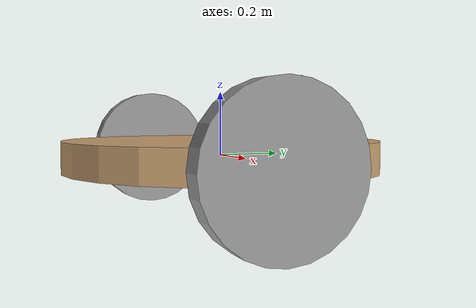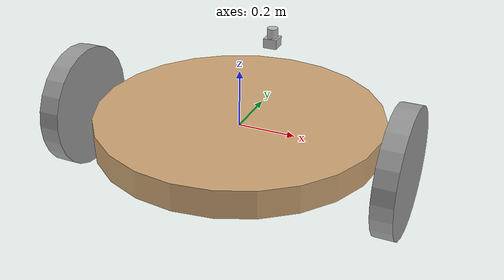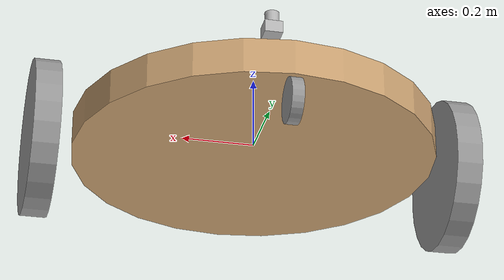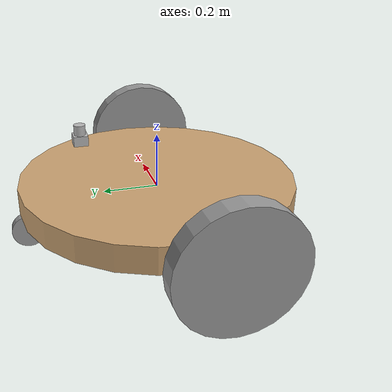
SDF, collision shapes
<?xml version='1.0'?>
<sdf version='1.7'>
  <model name='robot_draft'>
    <link name='caster_wheel'>
      <inertial>
        <mass>2</mass>
        <inertia>
          <ixx>0.00197836</ixx>
          <ixy>0</ixy>
          <ixz>0</ixz>
          <iyy>0.00197836</iyy>
          <iyz>0</iyz>
          <izz>0.00361478</izz>
        </inertia>
        <pose>0 0 0 0 -0 0</pose>
      </inertial>
      <pose>0.001456 0.474958 -0.113119 -3.14126 1.57079 -3.14126</pose>
      <self_collide>0</self_collide>
      <enable_wind>0</enable_wind>
      <kinematic>0</kinematic>
      <gravity>1</gravity>
      <visual name='visual'>
        <pose>0 0 0 0 -0 0</pose>
        <geometry>
          <cylinder>
            <radius>0.0601226</radius>
            <length>0.0320289</length>
          </cylinder>
        </geometry>
        <material>
          <lighting>1</lighting>
          <script>
            <uri>file://media/materials/scripts/gazebo.material</uri>
            <name>Gazebo/Grey</name>
          </script>
          <shader type='pixel'>
            <normal_map>__default__</normal_map>
          </shader>
          <ambient>0.3 0.3 0.3 1</ambient>
          <diffuse>0.7 0.7 0.7 1</diffuse>
          <specular>0.01 0.01 0.01 1</specular>
          <emissive>0 0 0 1</emissive>
        </material>
        <transparency>0</transparency>
        <cast_shadows>1</cast_shadows>
      </visual>
      <collision name='collision'>
        <laser_retro>0</laser_retro>
        <max_contacts>10</max_contacts>
        <pose>0 0 0 0 -0 0</pose>
        <geometry>
          <cylinder>
            <radius>0.060123</radius>
            <length>0.032029</length>
          </cylinder>
        </geometry>
        <surface>
          <friction>
            <ode>
              <mu>1</mu>
              <mu2>1</mu2>
              <fdir1>0 0 0</fdir1>
              <slip1>0</slip1>
              <slip2>0</slip2>
            </ode>
            <torsional>
              <coefficient>1</coefficient>
              <patch_radius>0</patch_radius>
              <surface_radius>0</surface_radius>
              <use_patch_radius>1</use_patch_radius>
              <ode>
                <slip>0</slip>
              </ode>
            </torsional>
          </friction>
          <bounce>
            <restitution_coefficient>0</restitution_coefficient>
            <threshold>1e+06</threshold>
          </bounce>
          <contact>
            <collide_without_contact>0</collide_without_contact>
            <collide_without_contact_bitmask>1</collide_without_contact_bitmask>
            <collide_bitmask>1</collide_bitmask>
            <ode>
              <soft_cfm>0</soft_cfm>
              <soft_erp>0.2</soft_erp>
              <kp>1e+13</kp>
              <kd>1</kd>
              <max_vel>0.01</max_vel>
              <min_depth>0</min_depth>
            </ode>
            <bullet>
              <split_impulse>1</split_impulse>
              <split_impulse_penetration_threshold>-0.01</split_impulse_penetration_threshold>
              <soft_cfm>0</soft_cfm>
              <soft_erp>0.2</soft_erp>
              <kp>1e+13</kp>
              <kd>1</kd>
            </bullet>
          </contact>
        </surface>
      </collision>
    </link>
    <link name='chassis'>
      <inertial>
        <mass>20</mass>
        <inertia>
          <ixx>1.26558</ixx>
          <ixy>0</ixy>
          <ixz>0</ixz>
          <iyy>1.26558</iyy>
          <iyz>0</iyz>
          <izz>2.5</izz>
        </inertia>
        <pose>0 0 0 0 -0 0</pose>
      </inertial>
      <pose>0 0 0 0 -0 0</pose>
      <gravity>1</gravity>
      <self_collide>0</self_collide>
      <kinematic>0</kinematic>
      <enable_wind>0</enable_wind>
      <visual name='visual'>
        <pose>0 0 0 0 -0 0</pose>
        <geometry>
          <cylinder>
            <radius>0.5</radius>
            <length>0.0966706</length>
          </cylinder>
        </geometry>
        <material>
          <lighting>1</lighting>
          <script>
            <uri>file://media/materials/scripts/gazebo.material</uri>
            <name>Gazebo/Grey</name>
          </script>
          <shader type='pixel'>
            <normal_map>__default__</normal_map>
          </shader>
          <ambient>0.8 0.64 0.45 1</ambient>
          <diffuse>0.7 0.7 0.7 1</diffuse>
          <specular>0.01 0.01 0.01 1</specular>
          <emissive>0 0 0 1</emissive>
        </material>
        <transparency>0</transparency>
        <cast_shadows>1</cast_shadows>
      </visual>
      <collision name='collision'>
        <laser_retro>0</laser_retro>
        <max_contacts>10</max_contacts>
        <pose>0 0 0 0 -0 0</pose>
        <geometry>
          <cylinder>
            <radius>0.5</radius>
            <length>0.096671</length>
          </cylinder>
        </geometry>
        <surface>
          <friction>
            <ode>
              <mu>1</mu>
              <mu2>1</mu2>
              <fdir1>0 0 0</fdir1>
              <slip1>0</slip1>
              <slip2>0</slip2>
            </ode>
            <torsional>
              <coefficient>1</coefficient>
              <patch_radius>0</patch_radius>
              <surface_radius>0</surface_radius>
              <use_patch_radius>1</use_patch_radius>
              <ode>
                <slip>0</slip>
              </ode>
            </torsional>
          </friction>
          <bounce>
            <restitution_coefficient>0</restitution_coefficient>
            <threshold>1e+06</threshold>
          </bounce>
          <contact>
            <collide_without_contact>0</collide_without_contact>
            <collide_without_contact_bitmask>1</collide_without_contact_bitmask>
            <collide_bitmask>1</collide_bitmask>
            <ode>
              <soft_cfm>0</soft_cfm>
              <soft_erp>0.2</soft_erp>
              <kp>1e+13</kp>
              <kd>1</kd>
              <max_vel>0.01</max_vel>
              <min_depth>0</min_depth>
            </ode>
            <bullet>
              <split_impulse>1</split_impulse>
              <split_impulse_penetration_threshold>-0.01</split_impulse_penetration_threshold>
              <soft_cfm>0</soft_cfm>
              <soft_erp>0.2</soft_erp>
              <kp>1e+13</kp>
              <kd>1</kd>
            </bullet>
          </contact>
        </surface>
      </collision>
    </link>
    <link name='left_wheel'>
      <inertial>
        <mass>1.5</mass>
        <inertia>
          <ixx>0.0181364</ixx>
          <ixy>0</ixy>
          <ixz>0</ixz>
          <iyy>0.0181364</iyy>
          <iyz>0</iyz>
          <izz>0.0349969</izz>
        </inertia>
        <pose>0 0 0 0 -0 0</pose>
      </inertial>
      <pose>-0.58 -0.08 0 -3.14126 1.57079 -3.14126</pose>
      <self_collide>0</self_collide>
      <enable_wind>0</enable_wind>
      <kinematic>0</kinematic>
      <gravity>1</gravity>
      <visual name='visual'>
        <pose>0 0 0 0 -0 0</pose>
        <geometry>
          <cylinder>
            <radius>0.216015</radius>
            <length>0.071441</length>
          </cylinder>
        </geometry>
        <material>
          <lighting>1</lighting>
          <script>
            <uri>file://media/materials/scripts/gazebo.material</uri>
            <name>Gazebo/Grey</name>
          </script>
          <shader type='pixel'>
            <normal_map>__default__</normal_map>
          </shader>
          <ambient>0.3 0.3 0.3 1</ambient>
          <diffuse>0.7 0.7 0.7 1</diffuse>
          <specular>0.01 0.01 0.01 1</specular>
          <emissive>0 0 0 1</emissive>
        </material>
        <transparency>0</transparency>
        <cast_shadows>1</cast_shadows>
      </visual>
      <collision name='collision'>
        <laser_retro>0</laser_retro>
        <max_contacts>10</max_contacts>
        <pose>0 0 0 0 -0 0</pose>
        <geometry>
          <cylinder>
            <radius>0.216015</radius>
            <length>0.071441</length>
          </cylinder>
        </geometry>
        <surface>
          <friction>
            <ode>
              <mu>1</mu>
              <mu2>1</mu2>
              <fdir1>0 0 0</fdir1>
              <slip1>0</slip1>
              <slip2>0</slip2>
            </ode>
            <torsional>
              <coefficient>1</coefficient>
              <patch_radius>0</patch_radius>
              <surface_radius>0</surface_radius>
              <use_patch_radius>1</use_patch_radius>
              <ode>
                <slip>0</slip>
              </ode>
            </torsional>
          </friction>
          <bounce>
            <restitution_coefficient>0</restitution_coefficient>
            <threshold>1e+06</threshold>
          </bounce>
          <contact>
            <collide_without_contact>0</collide_without_contact>
            <collide_without_contact_bitmask>1</collide_without_contact_bitmask>
            <collide_bitmask>1</collide_bitmask>
            <ode>
              <soft_cfm>0</soft_cfm>
              <soft_erp>0.2</soft_erp>
              <kp>1e+13</kp>
              <kd>1</kd>
              <max_vel>0.01</max_vel>
              <min_depth>0</min_depth>
            </ode>
            <bullet>
              <split_impulse>1</split_impulse>
              <split_impulse_penetration_threshold>-0.01</split_impulse_penetration_threshold>
              <soft_cfm>0</soft_cfm>
              <soft_erp>0.2</soft_erp>
              <kp>1e+13</kp>
              <kd>1</kd>
            </bullet>
          </contact>
        </surface>
      </collision>
    </link>
    <link name='right_wheel'>
      <inertial>
        <mass>1.5</mass>
        <inertia>
          <ixx>0.0181364</ixx>
          <ixy>0</ixy>
          <ixz>0</ixz>
          <iyy>0.0181364</iyy>
          <iyz>0</iyz>
          <izz>0.0349969</izz>
        </inertia>
        <pose>0 0 0 0 -0 0</pose>
      </inertial>
      <pose>0.58 -0.08 -0 -3.14126 1.57079 -3.14126</pose>
      <self_collide>0</self_collide>
      <enable_wind>0</enable_wind>
      <kinematic>0</kinematic>
      <gravity>1</gravity>
      <visual name='visual'>
        <pose>0 0 0 0 -0 0</pose>
        <geometry>
          <cylinder>
            <radius>0.216015</radius>
            <length>0.071441</length>
          </cylinder>
        </geometry>
        <material>
          <lighting>1</lighting>
          <script>
            <uri>file://media/materials/scripts/gazebo.material</uri>
            <name>Gazebo/Grey</name>
          </script>
          <shader type='pixel'>
            <normal_map>__default__</normal_map>
          </shader>
          <ambient>0.3 0.3 0.3 1</ambient>
          <diffuse>0.7 0.7 0.7 1</diffuse>
          <specular>0.01 0.01 0.01 1</specular>
          <emissive>0 0 0 1</emissive>
        </material>
        <transparency>0</transparency>
        <cast_shadows>1</cast_shadows>
      </visual>
      <collision name='collision'>
        <laser_retro>0</laser_retro>
        <max_contacts>10</max_contacts>
        <pose>0 0 0 0 -0 0</pose>
        <geometry>
          <cylinder>
            <radius>0.216015</radius>
            <length>0.071441</length>
          </cylinder>
        </geometry>
        <surface>
          <friction>
            <ode>
              <mu>1</mu>
              <mu2>1</mu2>
              <fdir1>0 0 0</fdir1>
              <slip1>0</slip1>
              <slip2>0</slip2>
            </ode>
            <torsional>
              <coefficient>1</coefficient>
              <patch_radius>0</patch_radius>
              <surface_radius>0</surface_radius>
              <use_patch_radius>1</use_patch_radius>
              <ode>
                <slip>0</slip>
              </ode>
            </torsional>
          </friction>
          <bounce>
            <restitution_coefficient>0</restitution_coefficient>
            <threshold>1e+06</threshold>
          </bounce>
          <contact>
            <collide_without_contact>0</collide_without_contact>
            <collide_without_contact_bitmask>1</collide_without_contact_bitmask>
            <collide_bitmask>1</collide_bitmask>
            <ode>
              <soft_cfm>0</soft_cfm>
              <soft_erp>0.2</soft_erp>
              <kp>1e+13</kp>
              <kd>1</kd>
              <max_vel>0.01</max_vel>
              <min_depth>0</min_depth>
            </ode>
            <bullet>
              <split_impulse>1</split_impulse>
              <split_impulse_penetration_threshold>-0.01</split_impulse_penetration_threshold>
              <soft_cfm>0</soft_cfm>
              <soft_erp>0.2</soft_erp>
              <kp>1e+13</kp>
              <kd>1</kd>
            </bullet>
          </contact>
        </surface>
      </collision>
    </link>
    <model name='lidar_2d'>
      <link name='laser_frame'>
        <pose>0 0 0 0 -0 1.57588</pose>
        <inertial>
          <pose>0 0 0.035003 0 -0 0</pose>
          <mass>0.130033</mass>
          <inertia>
            <ixx>2.628e-05</ixx>
            <ixy>0</ixy>
            <ixz>0</ixz>
            <iyy>2.628e-05</iyy>
            <iyz>0</iyz>
            <izz>2.601e-05</izz>
          </inertia>
        </inertial>
        <sensor name='laser' type='ray'>
          <pose>0 0 0.052505 0 -0 0</pose>
          <ray>
            <scan>
              <horizontal>
                <samples>540</samples>
                <resolution>1</resolution>
                <min_angle>-2.3562</min_angle>
                <max_angle>2.3562</max_angle>
              </horizontal>
              <vertical>
                <samples>1</samples>
                <min_angle>0</min_angle>
                <max_angle>0</max_angle>
              </vertical>
            </scan>
            <range>
              <min>0.06</min>
              <max>5</max>
              <resolution>0.01</resolution>
            </range>
            <noise>
              <type>gaussian</type>
              <mean>0</mean>
              <stddev>0.001</stddev>
            </noise>
          </ray>
          <plugin name='laser_controller' filename='libgazebo_ros_ray_sensor.so'>
            <ros>
              <argument>--ros-args --remap ~/out:=scan</argument>
            </ros>
            <output_type>sensor_msgs/LaserScan</output_type>
            <frame_name>laser_frame</frame_name>
          </plugin>
          <always_on>0</always_on>
          <update_rate>30</update_rate>
          <visualize>1</visualize>
        </sensor>
        <self_collide>0</self_collide>
        <enable_wind>0</enable_wind>
        <kinematic>0</kinematic>
        <gravity>1</gravity>
        <visual name='visual'>
          <pose>0 0 0 0 -0 1.5707</pose>
          <geometry>
            <mesh>
              <uri>https://fuel.ignitionrobotics.org/1.0/khulqu15/models/lidar 2d v1/1/files/meshes/lidar_2d_v1.dae</uri>
            </mesh>
          </geometry>
          <material>
            <shader type='pixel'>
              <normal_map>__default__</normal_map>
            </shader>
          </material>
          <transparency>0</transparency>
          <cast_shadows>1</cast_shadows>
        </visual>
        <collision name='collision_base'>
          <laser_retro>0</laser_retro>
          <max_contacts>10</max_contacts>
          <pose>0 0 0.017502 0 -0 0</pose>
          <geometry>
            <box>
              <size>0.050011 0.050011 0.035003</size>
            </box>
          </geometry>
          <surface>
            <friction>
              <ode>
                <mu>980000</mu>
                <mu2>980000</mu2>
                <fdir1>0 0 0</fdir1>
                <slip1>0</slip1>
                <slip2>0</slip2>
              </ode>
              <torsional>
                <coefficient>1</coefficient>
                <patch_radius>0</patch_radius>
                <surface_radius>0</surface_radius>
                <use_patch_radius>1</use_patch_radius>
                <ode>
                  <slip>0</slip>
                </ode>
              </torsional>
            </friction>
            <bounce>
              <restitution_coefficient>0</restitution_coefficient>
              <threshold>1e+06</threshold>
            </bounce>
            <contact>
              <collide_without_contact>0</collide_without_contact>
              <collide_without_contact_bitmask>1</collide_without_contact_bitmask>
              <collide_bitmask>1</collide_bitmask>
              <ode>
                <soft_cfm>0</soft_cfm>
                <soft_erp>0.2</soft_erp>
                <kp>1e+13</kp>
                <kd>1</kd>
                <max_vel>0.01</max_vel>
                <min_depth>0</min_depth>
              </ode>
              <bullet>
                <split_impulse>1</split_impulse>
                <split_impulse_penetration_threshold>-0.01</split_impulse_penetration_threshold>
                <soft_cfm>0</soft_cfm>
                <soft_erp>0.2</soft_erp>
                <kp>1e+13</kp>
                <kd>1</kd>
              </bullet>
            </contact>
          </surface>
        </collision>
        <collision name='collision_top'>
          <laser_retro>0</laser_retro>
          <max_contacts>10</max_contacts>
          <pose>0 0 0.052505 0 -0 0</pose>
          <geometry>
            <cylinder>
              <radius>0.02</radius>
              <length>0.035003</length>
            </cylinder>
          </geometry>
          <surface>
            <friction>
              <ode>
                <mu>1</mu>
                <mu2>1</mu2>
                <fdir1>0 0 0</fdir1>
                <slip1>0</slip1>
                <slip2>0</slip2>
              </ode>
              <torsional>
                <coefficient>1</coefficient>
                <patch_radius>0</patch_radius>
                <surface_radius>0</surface_radius>
                <use_patch_radius>1</use_patch_radius>
                <ode>
                  <slip>0</slip>
                </ode>
              </torsional>
            </friction>
            <bounce>
              <restitution_coefficient>0</restitution_coefficient>
              <threshold>1e+06</threshold>
            </bounce>
            <contact>
              <collide_without_contact>0</collide_without_contact>
              <collide_without_contact_bitmask>1</collide_without_contact_bitmask>
              <collide_bitmask>1</collide_bitmask>
              <ode>
                <soft_cfm>0</soft_cfm>
                <soft_erp>0.2</soft_erp>
                <kp>1e+13</kp>
                <kd>1</kd>
                <max_vel>0.01</max_vel>
                <min_depth>0</min_depth>
              </ode>
              <bullet>
                <split_impulse>1</split_impulse>
                <split_impulse_penetration_threshold>-0.01</split_impulse_penetration_threshold>
                <soft_cfm>0</soft_cfm>
                <soft_erp>0.2</soft_erp>
                <kp>1e+13</kp>
                <kd>1</kd>
              </bullet>
            </contact>
          </surface>
        </collision>
      </link>
      <static>0</static>
      <allow_auto_disable>1</allow_auto_disable>
      <pose>0.007689 0.271264 0.190656 0 -0 0</pose>
    </model>
    <joint name='caster_wheel_joint' type='revolute'>
      <parent>chassis</parent>
      <child>caster_wheel</child>
      <pose>0 0 0 0 -0 0</pose>
      <axis>
        <xyz>0 0 -1</xyz>
        <limit>
          <lower>-1.79769e+308</lower>
          <upper>1.79769e+308</upper>
          <effort>-1</effort>
          <velocity>-1</velocity>
        </limit>
        <dynamics>
          <spring_reference>0</spring_reference>
          <spring_stiffness>0</spring_stiffness>
          <damping>0</damping>
          <friction>0</friction>
        </dynamics>
      </axis>
      <physics>
        <ode>
          <limit>
            <cfm>0</cfm>
            <erp>0.2</erp>
          </limit>
          <suspension>
            <cfm>0</cfm>
            <erp>0.2</erp>
          </suspension>
        </ode>
      </physics>
    </joint>
    <joint name='chassis_JOINT_1' type='fixed'>
      <parent>chassis</parent>
      <child>lidar_2d::laser_frame</child>
      <pose>0 0 0 0 -0 0</pose>
      <physics>
        <ode>
          <limit>
            <cfm>0</cfm>
            <erp>0.2</erp>
          </limit>
          <suspension>
            <cfm>0</cfm>
            <erp>0.2</erp>
          </suspension>
        </ode>
      </physics>
    </joint>
    <joint name='left_wheel_joint' type='revolute'>
      <parent>chassis</parent>
      <child>left_wheel</child>
      <pose>0 0 0 0 -0 0</pose>
      <axis>
        <xyz>0 0 -1</xyz>
        <limit>
          <lower>-1.79769e+308</lower>
          <upper>1.79769e+308</upper>
          <effort>-1</effort>
          <velocity>-1</velocity>
        </limit>
        <dynamics>
          <spring_reference>0</spring_reference>
          <spring_stiffness>0</spring_stiffness>
          <damping>0</damping>
          <friction>0</friction>
        </dynamics>
      </axis>
      <physics>
        <ode>
          <limit>
            <cfm>0</cfm>
            <erp>0.2</erp>
          </limit>
          <suspension>
            <cfm>0</cfm>
            <erp>0.2</erp>
          </suspension>
        </ode>
      </physics>
    </joint>
    <joint name='right_wheel_joint' type='revolute'>
      <parent>chassis</parent>
      <child>right_wheel</child>
      <pose>0 0 0 0 -0 0</pose>
      <axis>
        <xyz>0 0 -1</xyz>
        <limit>
          <lower>-1.79769e+308</lower>
          <upper>1.79769e+308</upper>
          <effort>-1</effort>
          <velocity>-1</velocity>
        </limit>
        <dynamics>
          <spring_reference>0</spring_reference>
          <spring_stiffness>0</spring_stiffness>
          <damping>0</damping>
          <friction>0</friction>
        </dynamics>
      </axis>
      <physics>
        <ode>
          <limit>
            <cfm>0</cfm>
            <erp>0.2</erp>
          </limit>
          <suspension>
            <cfm>0</cfm>
            <erp>0.2</erp>
          </suspension>
        </ode>
      </physics>
    </joint>
    <static>0</static>
    <allow_auto_disable>1</allow_auto_disable>
    <plugin name='velocity_setter' filename='libwheel_velocity_setter.so'/>
  </model>
</sdf>
